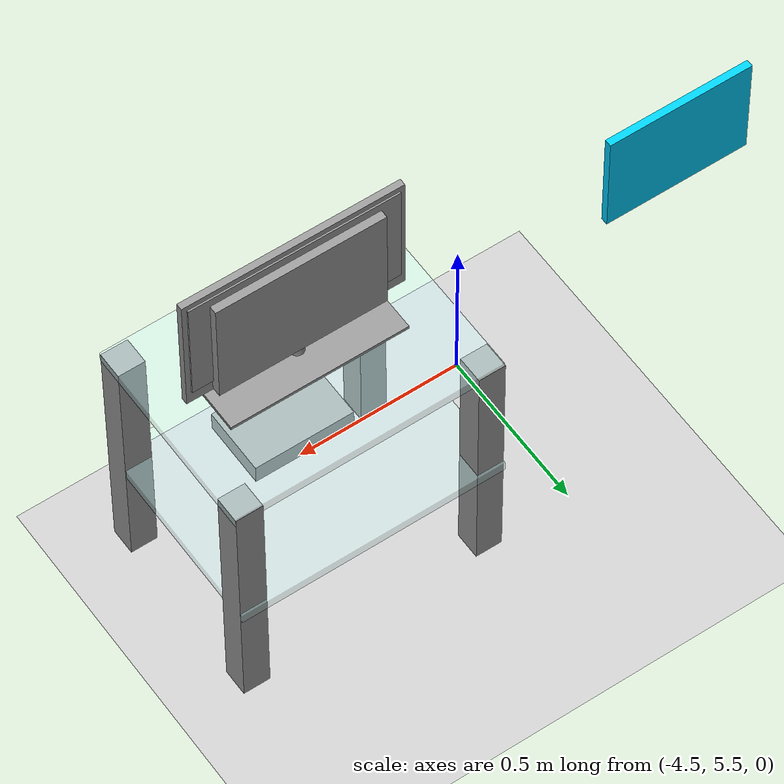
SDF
<sdf version="1.7">
 <world name="default">
  <model name="ground_plane">
   <static>1</static>
   <link name="link">
    <collision name="collision">
     <geometry><plane><normal>0 0 1</normal><size>100 100</size></plane></geometry>
     <surface>
      <contact><collide_bitmask>65535</collide_bitmask></contact>
      <friction><ode><mu>100</mu><mu2>50</mu2></ode></friction>
     </surface>
    </collision>
    <visual name="visual">
     <cast_shadows>0</cast_shadows>
     <geometry><plane><normal>0 0 1</normal><size>100 100</size></plane></geometry>
     <material>
      <script><uri>file://media/materials/scripts/gazebo.material</uri><name>Gazebo/Grey</name></script>
     </material>
    </visual>
   </link>
  </model>
  <model name="my_tv_set">
   <link name="link">
    <inertial>
     <mass>1</mass>
     <inertia>
      <ixx>0.166667</ixx>
      <ixy>0</ixy>
      <ixz>0</ixz>
      <iyy>0.166667</iyy>
      <iyz>0</iyz>
      <izz>0.166667</izz>
     </inertia>
    </inertial>
    <pose>0.111837 0.203266 0 0 -0 0</pose>
    <visual name="visual">
     <geometry><box><size>0.08 0.08 0.8</size></box></geometry>
     <material>
      <script><name>Gazebo/Grey</name><uri>file://media/materials/scripts/gazebo.material</uri></script>
      <shader type="pixel"><normal_map>__default__</normal_map></shader>
      <ambient>0.6 0.6 0.6 1</ambient>
      <diffuse>0.7 0.7 0.7 1</diffuse>
      <specular>0.01 0.01 0.01 1</specular>
      <emissive>0 0 0 1</emissive>
     </material>
     <pose>0 0 0.4 0 -0 0</pose>
    </visual>
    <collision name="collision">
     <pose>0 0 0.4 0 -0 0</pose>
     <geometry><box><size>0.08 0.08 0.8</size></box></geometry>
     <surface>
      <friction>
       <ode><mu>1</mu><mu2>1</mu2><fdir1>0 0 0</fdir1><slip1>0</slip1><slip2>0</slip2></ode>
       <torsional>
        <coefficient>1</coefficient>
        <patch_radius>0</patch_radius>
        <surface_radius>0</surface_radius>
        <use_patch_radius>1</use_patch_radius>
        <ode><slip>0</slip></ode>
       </torsional>
      </friction>
      <bounce><restitution_coefficient>0</restitution_coefficient><threshold>1e+06</threshold></bounce>
      <contact>
       <collide_without_contact>0</collide_without_contact>
       <collide_without_contact_bitmask>1</collide_without_contact_bitmask>
       <collide_bitmask>1</collide_bitmask>
       <ode>
        <soft_cfm>0</soft_cfm>
        <soft_erp>0.2</soft_erp>
        <kp>1e+13</kp>
        <kd>1</kd>
        <max_vel>0.01</max_vel>
        <min_depth>0</min_depth>
       </ode>
       <bullet>
        <split_impulse>1</split_impulse>
        <split_impulse_penetration_threshold>-0.01</split_impulse_penetration_threshold>
        <soft_cfm>0</soft_cfm>
        <soft_erp>0.2</soft_erp>
        <kp>1e+13</kp>
        <kd>1</kd>
       </bullet>
      </contact>
     </surface>
    </collision>
   </link>
   <link name="link_0">
    <inertial>
     <mass>1</mass>
     <inertia>
      <ixx>0.166667</ixx>
      <ixy>0</ixy>
      <ixz>0</ixz>
      <iyy>0.166667</iyy>
      <iyz>0</iyz>
      <izz>0.166667</izz>
     </inertia>
    </inertial>
    <pose>0.470061 0.471071 -0.037751 0 -0 0</pose>
    <visual name="visual">
     <pose>0 0 0.4 0 -0 0</pose>
     <geometry><box><size>0.8 0.6 0.03</size></box></geometry>
     <material>
      <lighting>1</lighting>
      <script><uri>file://media/materials/scripts/gazebo.material</uri><name>Gazebo/Grey</name></script>
      <shader type="pixel"><normal_map>__default__</normal_map></shader>
      <ambient>0.79 1 1 0.3</ambient>
      <diffuse>0.79 1 1 0.3</diffuse>
      <specular>0.1 0.1 0.1 1</specular>
      <emissive>0 0 0 1</emissive>
     </material>
     <transparency>0.5</transparency>
    </visual>
    <collision name="collision">
     <pose>0 0 0.4 0 -0 0</pose>
     <geometry><box><size>0.8 0.6 0.03</size></box></geometry>
     <surface>
      <friction>
       <ode><mu>1</mu><mu2>1</mu2><fdir1>0 0 0</fdir1><slip1>0</slip1><slip2>0</slip2></ode>
       <torsional>
        <coefficient>1</coefficient>
        <patch_radius>0</patch_radius>
        <surface_radius>0</surface_radius>
        <use_patch_radius>1</use_patch_radius>
        <ode><slip>0</slip></ode>
       </torsional>
      </friction>
      <bounce><restitution_coefficient>0</restitution_coefficient><threshold>1e+06</threshold></bounce>
      <contact>
       <collide_without_contact>0</collide_without_contact>
       <collide_without_contact_bitmask>1</collide_without_contact_bitmask>
       <collide_bitmask>1</collide_bitmask>
       <ode>
        <soft_cfm>0</soft_cfm>
        <soft_erp>0.2</soft_erp>
        <kp>1e+13</kp>
        <kd>1</kd>
        <max_vel>0.01</max_vel>
        <min_depth>0</min_depth>
       </ode>
       <bullet>
        <split_impulse>1</split_impulse>
        <split_impulse_penetration_threshold>-0.01</split_impulse_penetration_threshold>
        <soft_cfm>0</soft_cfm>
        <soft_erp>0.2</soft_erp>
        <kp>1e+13</kp>
        <kd>1</kd>
       </bullet>
      </contact>
     </surface>
    </collision>
   </link>
   <link name="link_0_0">
    <inertial>
     <mass>1</mass>
     <inertia>
      <ixx>0.166667</ixx>
      <ixy>0</ixy>
      <ixz>0</ixz>
      <iyy>0.166667</iyy>
      <iyz>0</iyz>
      <izz>0.166667</izz>
     </inertia>
    </inertial>
    <pose>0.470061 0.361348 0.412162 0 -0 0</pose>
    <visual name="visual">
     <geometry><box><size>0.3 0.2 0.06</size></box></geometry>
     <material>
      <lighting>1</lighting>
      <script><uri>file://media/materials/scripts/gazebo.material</uri><name>Gazebo/Grey</name></script>
      <shader type="pixel"><normal_map>__default__</normal_map></shader>
      <ambient>0.2 0.2 0.2 0</ambient>
      <diffuse>0.2 0.2 0.2 1</diffuse>
      <specular>0.01 0.01 0.01 1</specular>
      <emissive>0 0 0 1</emissive>
     </material>
    </visual>
    <collision name="collision">
     <geometry><box><size>0.3 0.2 0.06</size></box></geometry>
     <surface>
      <friction>
       <ode><mu>1</mu><mu2>1</mu2><fdir1>0 0 0</fdir1><slip1>0</slip1><slip2>0</slip2></ode>
       <torsional>
        <coefficient>1</coefficient>
        <patch_radius>0</patch_radius>
        <surface_radius>0</surface_radius>
        <use_patch_radius>1</use_patch_radius>
        <ode><slip>0</slip></ode>
       </torsional>
      </friction>
      <bounce><restitution_coefficient>0</restitution_coefficient><threshold>1e+06</threshold></bounce>
      <contact>
       <collide_without_contact>0</collide_without_contact>
       <collide_without_contact_bitmask>1</collide_without_contact_bitmask>
       <collide_bitmask>1</collide_bitmask>
       <ode>
        <soft_cfm>0</soft_cfm>
        <soft_erp>0.2</soft_erp>
        <kp>1e+13</kp>
        <kd>1</kd>
        <max_vel>0.01</max_vel>
        <min_depth>0</min_depth>
       </ode>
       <bullet>
        <split_impulse>1</split_impulse>
        <split_impulse_penetration_threshold>-0.01</split_impulse_penetration_threshold>
        <soft_cfm>0</soft_cfm>
        <soft_erp>0.2</soft_erp>
        <kp>1e+13</kp>
        <kd>1</kd>
       </bullet>
      </contact>
     </surface>
    </collision>
   </link>
   <link name="link_0_1">
    <inertial>
     <mass>1</mass>
     <inertia>
      <ixx>0.166667</ixx>
      <ixy>0</ixy>
      <ixz>0</ixz>
      <iyy>0.166667</iyy>
      <iyz>0</iyz>
      <izz>0.166667</izz>
     </inertia>
    </inertial>
    <pose>0.41274 0.328539 0.410532 0 -0 0</pose>
    <visual name="visual">
     <geometry><box><size>0.15 0.14 0.035</size></box></geometry>
     <material>
      <lighting>1</lighting>
      <script><uri>file://media/materials/scripts/gazebo.material</uri><name>Gazebo/Grey</name></script>
      <shader type="pixel"><normal_map>__default__</normal_map></shader>
      <ambient>0.3 0.3 0.3 1</ambient>
      <diffuse>0.7 0.7 0.7 1</diffuse>
      <specular>0.01 0.01 0.01 1</specular>
      <emissive>0 0 0 1</emissive>
     </material>
    </visual>
    <collision name="collision">
     <geometry><box><size>0.15 0.14 0.035</size></box></geometry>
     <surface>
      <friction>
       <ode><mu>1</mu><mu2>1</mu2><fdir1>0 0 0</fdir1><slip1>0</slip1><slip2>0</slip2></ode>
       <torsional>
        <coefficient>1</coefficient>
        <patch_radius>0</patch_radius>
        <surface_radius>0</surface_radius>
        <use_patch_radius>1</use_patch_radius>
        <ode><slip>0</slip></ode>
       </torsional>
      </friction>
      <bounce><restitution_coefficient>0</restitution_coefficient><threshold>1e+06</threshold></bounce>
      <contact>
       <collide_without_contact>0</collide_without_contact>
       <collide_without_contact_bitmask>1</collide_without_contact_bitmask>
       <collide_bitmask>1</collide_bitmask>
       <ode>
        <soft_cfm>0</soft_cfm>
        <soft_erp>0.2</soft_erp>
        <kp>1e+13</kp>
        <kd>1</kd>
        <max_vel>0.01</max_vel>
        <min_depth>0</min_depth>
       </ode>
       <bullet>
        <split_impulse>1</split_impulse>
        <split_impulse_penetration_threshold>-0.01</split_impulse_penetration_threshold>
        <soft_cfm>0</soft_cfm>
        <soft_erp>0.2</soft_erp>
        <kp>1e+13</kp>
        <kd>1</kd>
       </bullet>
      </contact>
     </surface>
    </collision>
   </link>
   <link name="link_0_clone">
    <inertial>
     <mass>1</mass>
     <inertia>
      <ixx>0.166667</ixx>
      <ixy>0</ixy>
      <ixz>0</ixz>
      <iyy>0.166667</iyy>
      <iyz>0</iyz>
      <izz>0.166667</izz>
     </inertia>
    </inertial>
    <pose>0.470453 0.462923 0.393901 4e-06 0.005849 0.001188</pose>
    <visual name="visual">
     <pose>0 0 0.4 0 -0 0</pose>
     <geometry><box><size>0.8 0.6 0.03</size></box></geometry>
     <material>
      <lighting>1</lighting>
      <script><uri>file://media/materials/scripts/gazebo.material</uri><name>Gazebo/Grey</name></script>
      <shader type="pixel"><normal_map>__default__</normal_map></shader>
      <ambient>0.79 1 1 0.3</ambient>
      <diffuse>0.79 1 1 0.3</diffuse>
      <specular>0.1 0.1 0.1 1</specular>
      <emissive>0 0 0 1</emissive>
     </material>
     <transparency>0.5</transparency>
    </visual>
    <collision name="collision">
     <pose>0 0 0.4 0 -0 0</pose>
     <geometry><box><size>0.8 0.6 0.03</size></box></geometry>
     <surface>
      <friction>
       <ode><mu>1</mu><mu2>1</mu2><fdir1>0 0 0</fdir1><slip1>0</slip1><slip2>0</slip2></ode>
       <torsional>
        <coefficient>1</coefficient>
        <patch_radius>0</patch_radius>
        <surface_radius>0</surface_radius>
        <use_patch_radius>1</use_patch_radius>
        <ode><slip>0</slip></ode>
       </torsional>
      </friction>
      <bounce><restitution_coefficient>0</restitution_coefficient><threshold>1e+06</threshold></bounce>
      <contact>
       <collide_without_contact>0</collide_without_contact>
       <collide_without_contact_bitmask>1</collide_without_contact_bitmask>
       <collide_bitmask>1</collide_bitmask>
       <ode>
        <soft_cfm>0</soft_cfm>
        <soft_erp>0.2</soft_erp>
        <kp>1e+13</kp>
        <kd>1</kd>
        <max_vel>0.01</max_vel>
        <min_depth>0</min_depth>
       </ode>
       <bullet>
        <split_impulse>1</split_impulse>
        <split_impulse_penetration_threshold>-0.01</split_impulse_penetration_threshold>
        <soft_cfm>0</soft_cfm>
        <soft_erp>0.2</soft_erp>
        <kp>1e+13</kp>
        <kd>1</kd>
       </bullet>
      </contact>
     </surface>
    </collision>
   </link>
   <link name="link_1">
    <inertial>
     <mass>1</mass>
     <inertia><ixx>0.1</ixx><ixy>0</ixy><ixz>0</ixz><iyy>0.1</iyy><iyz>0</iyz><izz>0.1</izz></inertia>
    </inertial>
    <pose>0.574001 0.261573 0.40938 0 -0 0</pose>
    <visual name="visual">
     <geometry><sphere><radius>0.005</radius></sphere></geometry>
     <material>
      <lighting>1</lighting>
      <script><uri>file://media/materials/scripts/gazebo.material</uri><name>Gazebo/Grey</name></script>
      <shader type="pixel"><normal_map>__default__</normal_map></shader>
      <ambient>1 0 0 1</ambient>
      <diffuse>1 0 0 1</diffuse>
      <specular>0.01 0.01 0.01 1</specular>
      <emissive>0.5 0 0 1</emissive>
     </material>
    </visual>
    <collision name="collision">
     <geometry><sphere><radius>0.005</radius></sphere></geometry>
     <surface>
      <friction>
       <ode><mu>1</mu><mu2>1</mu2><fdir1>0 0 0</fdir1><slip1>0</slip1><slip2>0</slip2></ode>
       <torsional>
        <coefficient>1</coefficient>
        <patch_radius>0</patch_radius>
        <surface_radius>0</surface_radius>
        <use_patch_radius>1</use_patch_radius>
        <ode><slip>0</slip></ode>
       </torsional>
      </friction>
      <bounce><restitution_coefficient>0</restitution_coefficient><threshold>1e+06</threshold></bounce>
      <contact>
       <collide_without_contact>0</collide_without_contact>
       <collide_without_contact_bitmask>1</collide_without_contact_bitmask>
       <collide_bitmask>1</collide_bitmask>
       <ode>
        <soft_cfm>0</soft_cfm>
        <soft_erp>0.2</soft_erp>
        <kp>1e+13</kp>
        <kd>1</kd>
        <max_vel>0.01</max_vel>
        <min_depth>0</min_depth>
       </ode>
       <bullet>
        <split_impulse>1</split_impulse>
        <split_impulse_penetration_threshold>-0.01</split_impulse_penetration_threshold>
        <soft_cfm>0</soft_cfm>
        <soft_erp>0.2</soft_erp>
        <kp>1e+13</kp>
        <kd>1</kd>
       </bullet>
      </contact>
     </surface>
    </collision>
   </link>
   <link name="link_1_0">
    <inertial>
     <mass>1</mass>
     <inertia>
      <ixx>0.166667</ixx>
      <ixy>0</ixy>
      <ixz>0</ixz>
      <iyy>0.166667</iyy>
      <iyz>0</iyz>
      <izz>0.166667</izz>
     </inertia>
    </inertial>
    <pose>0.471646 0.442924 0.818235 0 -0 0</pose>
    <visual name="visual">
     <geometry><box><size>0.53 0.2 0.01</size></box></geometry>
     <material>
      <lighting>1</lighting>
      <script><uri>file://media/materials/scripts/gazebo.material</uri><name>Gazebo/Grey</name></script>
      <shader type="pixel"><normal_map>__default__</normal_map></shader>
      <ambient>0.1 0.1 0.1 1</ambient>
      <diffuse>0.3 0.3 0.3 1</diffuse>
      <specular>0.01 0.01 0.01 1</specular>
      <emissive>0 0 0 1</emissive>
     </material>
    </visual>
    <collision name="collision">
     <geometry><box><size>0.53 0.2 0.01</size></box></geometry>
     <surface>
      <friction>
       <ode><mu>1</mu><mu2>1</mu2><fdir1>0 0 0</fdir1><slip1>0</slip1><slip2>0</slip2></ode>
       <torsional>
        <coefficient>1</coefficient>
        <patch_radius>0</patch_radius>
        <surface_radius>0</surface_radius>
        <use_patch_radius>1</use_patch_radius>
        <ode><slip>0</slip></ode>
       </torsional>
      </friction>
      <bounce><restitution_coefficient>0</restitution_coefficient><threshold>1e+06</threshold></bounce>
      <contact>
       <collide_without_contact>0</collide_without_contact>
       <collide_without_contact_bitmask>1</collide_without_contact_bitmask>
       <collide_bitmask>1</collide_bitmask>
       <ode>
        <soft_cfm>0</soft_cfm>
        <soft_erp>0.2</soft_erp>
        <kp>1e+13</kp>
        <kd>1</kd>
        <max_vel>0.01</max_vel>
        <min_depth>0</min_depth>
       </ode>
       <bullet>
        <split_impulse>1</split_impulse>
        <split_impulse_penetration_threshold>-0.01</split_impulse_penetration_threshold>
        <soft_cfm>0</soft_cfm>
        <soft_erp>0.2</soft_erp>
        <kp>1e+13</kp>
        <kd>1</kd>
       </bullet>
      </contact>
     </surface>
    </collision>
   </link>
   <link name="link_1_clone">
    <inertial>
     <mass>1</mass>
     <inertia><ixx>0.1</ixx><ixy>0</ixy><ixz>0</ixz><iyy>0.1</iyy><iyz>0</iyz><izz>0.1</izz></inertia>
    </inertial>
    <pose>0.762041 0.41864 0.873637 0 -0 0</pose>
    <visual name="visual">
     <geometry><sphere><radius>0.005</radius></sphere></geometry>
     <material>
      <lighting>1</lighting>
      <script><uri>file://media/materials/scripts/gazebo.material</uri><name>Gazebo/Grey</name></script>
      <shader type="pixel"><normal_map>__default__</normal_map></shader>
      <ambient>1 0 0 1</ambient>
      <diffuse>1 0 0 1</diffuse>
      <specular>0.01 0.01 0.01 1</specular>
      <emissive>0.5 0 0 1</emissive>
     </material>
    </visual>
    <collision name="collision">
     <geometry><sphere><radius>0.005</radius></sphere></geometry>
     <surface>
      <friction>
       <ode><mu>1</mu><mu2>1</mu2><fdir1>0 0 0</fdir1><slip1>0</slip1><slip2>0</slip2></ode>
       <torsional>
        <coefficient>1</coefficient>
        <patch_radius>0</patch_radius>
        <surface_radius>0</surface_radius>
        <use_patch_radius>1</use_patch_radius>
        <ode><slip>0</slip></ode>
       </torsional>
      </friction>
      <bounce><restitution_coefficient>0</restitution_coefficient><threshold>1e+06</threshold></bounce>
      <contact>
       <collide_without_contact>0</collide_without_contact>
       <collide_without_contact_bitmask>1</collide_without_contact_bitmask>
       <collide_bitmask>1</collide_bitmask>
       <ode>
        <soft_cfm>0</soft_cfm>
        <soft_erp>0.2</soft_erp>
        <kp>1e+13</kp>
        <kd>1</kd>
        <max_vel>0.01</max_vel>
        <min_depth>0</min_depth>
       </ode>
       <bullet>
        <split_impulse>1</split_impulse>
        <split_impulse_penetration_threshold>-0.01</split_impulse_penetration_threshold>
        <soft_cfm>0</soft_cfm>
        <soft_erp>0.2</soft_erp>
        <kp>1e+13</kp>
        <kd>1</kd>
       </bullet>
      </contact>
     </surface>
    </collision>
   </link>
   <link name="link_2">
    <inertial>
     <mass>1</mass>
     <inertia><ixx>0.145833</ixx><ixy>0</ixy><ixz>0</ixz><iyy>0.145833</iyy><iyz>0</iyz><izz>0.125</izz></inertia>
    </inertial>
    <pose>0.472907 0.442924 0.831235 0 -0 0</pose>
    <visual name="visual">
     <geometry><cylinder><radius>0.02</radius><length>0.04</length></cylinder></geometry>
     <material>
      <lighting>1</lighting>
      <script><uri>file://media/materials/scripts/gazebo.material</uri><name>Gazebo/Grey</name></script>
      <shader type="pixel"><normal_map>__default__</normal_map></shader>
      <ambient>0.1 0.1 0.1 0</ambient>
      <diffuse>0.3 0.3 0.3 1</diffuse>
      <specular>0.01 0.01 0.01 1</specular>
      <emissive>0 0 0 1</emissive>
     </material>
    </visual>
    <collision name="collision">
     <geometry><cylinder><radius>0.02</radius><length>0.04</length></cylinder></geometry>
     <surface>
      <friction>
       <ode><mu>1</mu><mu2>1</mu2><fdir1>0 0 0</fdir1><slip1>0</slip1><slip2>0</slip2></ode>
       <torsional>
        <coefficient>1</coefficient>
        <patch_radius>0</patch_radius>
        <surface_radius>0</surface_radius>
        <use_patch_radius>1</use_patch_radius>
        <ode><slip>0</slip></ode>
       </torsional>
      </friction>
      <bounce><restitution_coefficient>0</restitution_coefficient><threshold>1e+06</threshold></bounce>
      <contact>
       <collide_without_contact>0</collide_without_contact>
       <collide_without_contact_bitmask>1</collide_without_contact_bitmask>
       <collide_bitmask>1</collide_bitmask>
       <ode>
        <soft_cfm>0</soft_cfm>
        <soft_erp>0.2</soft_erp>
        <kp>1e+13</kp>
        <kd>1</kd>
        <max_vel>0.01</max_vel>
        <min_depth>0</min_depth>
       </ode>
       <bullet>
        <split_impulse>1</split_impulse>
        <split_impulse_penetration_threshold>-0.01</split_impulse_penetration_threshold>
        <soft_cfm>0</soft_cfm>
        <soft_erp>0.2</soft_erp>
        <kp>1e+13</kp>
        <kd>1</kd>
       </bullet>
      </contact>
     </surface>
    </collision>
   </link>
   <link name="link_3">
    <inertial>
     <mass>1</mass>
     <inertia>
      <ixx>0.166667</ixx>
      <ixy>0</ixy>
      <ixz>0</ixz>
      <iyy>0.166667</iyy>
      <iyz>0</iyz>
      <izz>0.166667</izz>
     </inertia>
    </inertial>
    <pose>0.469996 0.427043 1.0468 0 -0 0</pose>
    <visual name="visual">
     <geometry><box><size>0.65 0.02 0.4</size></box></geometry>
     <material>
      <lighting>1</lighting>
      <script><uri>file://media/materials/scripts/gazebo.material</uri><name>Gazebo/Grey</name></script>
      <shader type="pixel"><normal_map>__default__</normal_map></shader>
      <ambient>0.1 0.1 0.1 1</ambient>
      <diffuse>0.3 0.3 0.3 1</diffuse>
      <specular>0.01 0.01 0.01 1</specular>
      <emissive>0 0 0 1</emissive>
     </material>
    </visual>
    <collision name="collision">
     <geometry><box><size>0.65 0.02 0.4</size></box></geometry>
     <surface>
      <friction>
       <ode><mu>1</mu><mu2>1</mu2><fdir1>0 0 0</fdir1><slip1>0</slip1><slip2>0</slip2></ode>
       <torsional>
        <coefficient>1</coefficient>
        <patch_radius>0</patch_radius>
        <surface_radius>0</surface_radius>
        <use_patch_radius>1</use_patch_radius>
        <ode><slip>0</slip></ode>
       </torsional>
      </friction>
      <bounce><restitution_coefficient>0</restitution_coefficient><threshold>1e+06</threshold></bounce>
      <contact>
       <collide_without_contact>0</collide_without_contact>
       <collide_without_contact_bitmask>1</collide_without_contact_bitmask>
       <collide_bitmask>1</collide_bitmask>
       <ode>
        <soft_cfm>0</soft_cfm>
        <soft_erp>0.2</soft_erp>
        <kp>1e+13</kp>
        <kd>1</kd>
        <max_vel>0.01</max_vel>
        <min_depth>0</min_depth>
       </ode>
       <bullet>
        <split_impulse>1</split_impulse>
        <split_impulse_penetration_threshold>-0.01</split_impulse_penetration_threshold>
        <soft_cfm>0</soft_cfm>
        <soft_erp>0.2</soft_erp>
        <kp>1e+13</kp>
        <kd>1</kd>
       </bullet>
      </contact>
     </surface>
    </collision>
   </link>
   <link name="link_3_clone">
    <inertial>
     <mass>1</mass>
     <inertia>
      <ixx>0.166667</ixx>
      <ixy>0</ixy>
      <ixz>0</ixz>
      <iyy>0.166667</iyy>
      <iyz>0</iyz>
      <izz>0.166667</izz>
     </inertia>
    </inertial>
    <pose>0.467494 0.45061 1.02711 0 -0 0</pose>
    <visual name="visual">
     <geometry><box><size>0.5 0.03 0.35</size></box></geometry>
     <material>
      <lighting>1</lighting>
      <script><uri>file://media/materials/scripts/gazebo.material</uri><name>Gazebo/Grey</name></script>
      <shader type="pixel"><normal_map>__default__</normal_map></shader>
      <ambient>0.1 0.1 0.1 1</ambient>
      <diffuse>0.3 0.3 0.3 1</diffuse>
      <specular>0.01 0.01 0.01 1</specular>
      <emissive>0 0 0 1</emissive>
     </material>
    </visual>
    <collision name="collision">
     <geometry><box><size>0.5 0.03 0.35</size></box></geometry>
     <surface>
      <friction>
       <ode><mu>1</mu><mu2>1</mu2><fdir1>0 0 0</fdir1><slip1>0</slip1><slip2>0</slip2></ode>
       <torsional>
        <coefficient>1</coefficient>
        <patch_radius>0</patch_radius>
        <surface_radius>0</surface_radius>
        <use_patch_radius>1</use_patch_radius>
        <ode><slip>0</slip></ode>
       </torsional>
      </friction>
      <bounce><restitution_coefficient>0</restitution_coefficient><threshold>1e+06</threshold></bounce>
      <contact>
       <collide_without_contact>0</collide_without_contact>
       <collide_without_contact_bitmask>1</collide_without_contact_bitmask>
       <collide_bitmask>1</collide_bitmask>
       <ode>
        <soft_cfm>0</soft_cfm>
        <soft_erp>0.2</soft_erp>
        <kp>1e+13</kp>
        <kd>1</kd>
        <max_vel>0.01</max_vel>
        <min_depth>0</min_depth>
       </ode>
       <bullet>
        <split_impulse>1</split_impulse>
        <split_impulse_penetration_threshold>-0.01</split_impulse_penetration_threshold>
        <soft_cfm>0</soft_cfm>
        <soft_erp>0.2</soft_erp>
        <kp>1e+13</kp>
        <kd>1</kd>
       </bullet>
      </contact>
     </surface>
    </collision>
   </link>
   <link name="link_3_clone_clone">
    <inertial>
     <mass>1</mass>
     <inertia>
      <ixx>0.166667</ixx>
      <ixy>0</ixy>
      <ixz>0</ixz>
      <iyy>0.166667</iyy>
      <iyz>0</iyz>
      <izz>0.166667</izz>
     </inertia>
    </inertial>
    <pose>0.469808 0.426878 1.05906 0 -0 0</pose>
    <visual name="visual">
     <geometry><box><size>0.62 0.03 0.34</size></box></geometry>
     <material>
      <lighting>1</lighting>
      <script><uri>file://media/materials/scripts/gazebo.material</uri><name>Gazebo/Grey</name></script>
      <shader type="pixel"><normal_map>__default__</normal_map></shader>
      <ambient>0.3 0.3 0.3 1</ambient>
      <diffuse>0.4 0.4 0.4 1</diffuse>
      <specular>0.01 0.01 0.01 1</specular>
      <emissive>0 0 0 1</emissive>
     </material>
    </visual>
    <collision name="collision">
     <geometry><box><size>0.62 0.03 0.34</size></box></geometry>
     <surface>
      <friction>
       <ode><mu>1</mu><mu2>1</mu2><fdir1>0 0 0</fdir1><slip1>0</slip1><slip2>0</slip2></ode>
       <torsional>
        <coefficient>1</coefficient>
        <patch_radius>0</patch_radius>
        <surface_radius>0</surface_radius>
        <use_patch_radius>1</use_patch_radius>
        <ode><slip>0</slip></ode>
       </torsional>
      </friction>
      <bounce><restitution_coefficient>0</restitution_coefficient><threshold>1e+06</threshold></bounce>
      <contact>
       <collide_without_contact>0</collide_without_contact>
       <collide_without_contact_bitmask>1</collide_without_contact_bitmask>
       <collide_bitmask>1</collide_bitmask>
       <ode>
        <soft_cfm>0</soft_cfm>
        <soft_erp>0.2</soft_erp>
        <kp>1e+13</kp>
        <kd>1</kd>
        <max_vel>0.01</max_vel>
        <min_depth>0</min_depth>
       </ode>
       <bullet>
        <split_impulse>1</split_impulse>
        <split_impulse_penetration_threshold>-0.01</split_impulse_penetration_threshold>
        <soft_cfm>0</soft_cfm>
        <soft_erp>0.2</soft_erp>
        <kp>1e+13</kp>
        <kd>1</kd>
       </bullet>
      </contact>
     </surface>
    </collision>
   </link>
   <link name="link_clone">
    <inertial>
     <mass>1</mass>
     <inertia>
      <ixx>0.166667</ixx>
      <ixy>0</ixy>
      <ixz>0</ixz>
      <iyy>0.166667</iyy>
      <iyz>0</iyz>
      <izz>0.166667</izz>
     </inertia>
    </inertial>
    <pose>0.831942 0.205036 0 0 -0 0</pose>
    <visual name="visual">
     <geometry><box><size>0.08 0.08 0.8</size></box></geometry>
     <material>
      <script><name>Gazebo/Grey</name><uri>file://media/materials/scripts/gazebo.material</uri></script>
      <shader type="pixel"><normal_map>__default__</normal_map></shader>
      <ambient>0.6 0.6 0.6 1</ambient>
      <diffuse>0.7 0.7 0.7 1</diffuse>
      <specular>0.01 0.01 0.01 1</specular>
      <emissive>0 0 0 1</emissive>
     </material>
     <pose>0 0 0.4 0 -0 0</pose>
    </visual>
    <collision name="collision">
     <pose>0 0 0.4 0 -0 0</pose>
     <geometry><box><size>0.08 0.08 0.8</size></box></geometry>
     <surface>
      <friction>
       <ode><mu>1</mu><mu2>1</mu2><fdir1>0 0 0</fdir1><slip1>0</slip1><slip2>0</slip2></ode>
       <torsional>
        <coefficient>1</coefficient>
        <patch_radius>0</patch_radius>
        <surface_radius>0</surface_radius>
        <use_patch_radius>1</use_patch_radius>
        <ode><slip>0</slip></ode>
       </torsional>
      </friction>
      <bounce><restitution_coefficient>0</restitution_coefficient><threshold>1e+06</threshold></bounce>
      <contact>
       <collide_without_contact>0</collide_without_contact>
       <collide_without_contact_bitmask>1</collide_without_contact_bitmask>
       <collide_bitmask>1</collide_bitmask>
       <ode>
        <soft_cfm>0</soft_cfm>
        <soft_erp>0.2</soft_erp>
        <kp>1e+13</kp>
        <kd>1</kd>
        <max_vel>0.01</max_vel>
        <min_depth>0</min_depth>
       </ode>
       <bullet>
        <split_impulse>1</split_impulse>
        <split_impulse_penetration_threshold>-0.01</split_impulse_penetration_threshold>
        <soft_cfm>0</soft_cfm>
        <soft_erp>0.2</soft_erp>
        <kp>1e+13</kp>
        <kd>1</kd>
       </bullet>
      </contact>
     </surface>
    </collision>
   </link>
   <link name="link_clone_0">
    <inertial>
     <mass>1</mass>
     <inertia>
      <ixx>0.166667</ixx>
      <ixy>0</ixy>
      <ixz>0</ixz>
      <iyy>0.166667</iyy>
      <iyz>0</iyz>
      <izz>0.166667</izz>
     </inertia>
    </inertial>
    <pose>0.110061 0.7232 9e-06 0 -0 0</pose>
    <visual name="visual">
     <geometry><box><size>0.08 0.08 0.8</size></box></geometry>
     <material>
      <script><name>Gazebo/Grey</name><uri>file://media/materials/scripts/gazebo.material</uri></script>
      <shader type="pixel"><normal_map>__default__</normal_map></shader>
      <ambient>0.6 0.6 0.6 1</ambient>
      <diffuse>0.7 0.7 0.7 1</diffuse>
      <specular>0.01 0.01 0.01 1</specular>
      <emissive>0 0 0 1</emissive>
     </material>
     <pose>0 0 0.4 0 -0 0</pose>
    </visual>
    <collision name="collision">
     <pose>0 0 0.4 0 -0 0</pose>
     <geometry><box><size>0.08 0.08 0.8</size></box></geometry>
     <surface>
      <friction>
       <ode><mu>1</mu><mu2>1</mu2><fdir1>0 0 0</fdir1><slip1>0</slip1><slip2>0</slip2></ode>
       <torsional>
        <coefficient>1</coefficient>
        <patch_radius>0</patch_radius>
        <surface_radius>0</surface_radius>
        <use_patch_radius>1</use_patch_radius>
        <ode><slip>0</slip></ode>
       </torsional>
      </friction>
      <bounce><restitution_coefficient>0</restitution_coefficient><threshold>1e+06</threshold></bounce>
      <contact>
       <collide_without_contact>0</collide_without_contact>
       <collide_without_contact_bitmask>1</collide_without_contact_bitmask>
       <collide_bitmask>1</collide_bitmask>
       <ode>
        <soft_cfm>0</soft_cfm>
        <soft_erp>0.2</soft_erp>
        <kp>1e+13</kp>
        <kd>1</kd>
        <max_vel>0.01</max_vel>
        <min_depth>0</min_depth>
       </ode>
       <bullet>
        <split_impulse>1</split_impulse>
        <split_impulse_penetration_threshold>-0.01</split_impulse_penetration_threshold>
        <soft_cfm>0</soft_cfm>
        <soft_erp>0.2</soft_erp>
        <kp>1e+13</kp>
        <kd>1</kd>
       </bullet>
      </contact>
     </surface>
    </collision>
   </link>
   <link name="link_clone_0_clone">
    <inertial>
     <mass>1</mass>
     <inertia>
      <ixx>0.166667</ixx>
      <ixy>0</ixy>
      <ixz>0</ixz>
      <iyy>0.166667</iyy>
      <iyz>0</iyz>
      <izz>0.166667</izz>
     </inertia>
    </inertial>
    <pose>0.831088 0.724155 0 0 -0 0</pose>
    <visual name="visual">
     <geometry><box><size>0.08 0.08 0.8</size></box></geometry>
     <material>
      <script><name>Gazebo/Grey</name><uri>file://media/materials/scripts/gazebo.material</uri></script>
      <shader type="pixel"><normal_map>__default__</normal_map></shader>
      <ambient>0.6 0.6 0.6 1</ambient>
      <diffuse>0.7 0.7 0.7 1</diffuse>
      <specular>0.01 0.01 0.01 1</specular>
      <emissive>0 0 0 1</emissive>
     </material>
     <pose>0 0 0.4 0 -0 0</pose>
    </visual>
    <collision name="collision">
     <pose>0 0 0.4 0 -0 0</pose>
     <geometry><box><size>0.08 0.08 0.8</size></box></geometry>
     <surface>
      <friction>
       <ode><mu>1</mu><mu2>1</mu2><fdir1>0 0 0</fdir1><slip1>0</slip1><slip2>0</slip2></ode>
       <torsional>
        <coefficient>1</coefficient>
        <patch_radius>0</patch_radius>
        <surface_radius>0</surface_radius>
        <use_patch_radius>1</use_patch_radius>
        <ode><slip>0</slip></ode>
       </torsional>
      </friction>
      <bounce><restitution_coefficient>0</restitution_coefficient><threshold>1e+06</threshold></bounce>
      <contact>
       <collide_without_contact>0</collide_without_contact>
       <collide_without_contact_bitmask>1</collide_without_contact_bitmask>
       <collide_bitmask>1</collide_bitmask>
       <ode>
        <soft_cfm>0</soft_cfm>
        <soft_erp>0.2</soft_erp>
        <kp>1e+13</kp>
        <kd>1</kd>
        <max_vel>0.01</max_vel>
        <min_depth>0</min_depth>
       </ode>
       <bullet>
        <split_impulse>1</split_impulse>
        <split_impulse_penetration_threshold>-0.01</split_impulse_penetration_threshold>
        <soft_cfm>0</soft_cfm>
        <soft_erp>0.2</soft_erp>
        <kp>1e+13</kp>
        <kd>1</kd>
       </bullet>
      </contact>
     </surface>
    </collision>
   </link>
   <joint name="link_0_0_JOINT_1" type="fixed">
    <parent>link_0_0</parent>
    <child>link_1</child>
    <physics>
     <ode><limit><cfm>0</cfm><erp>0.2</erp></limit><suspension><cfm>0</cfm><erp>0.2</erp></suspension></ode>
    </physics>
   </joint>
   <joint name="link_0_JOINT_0" type="fixed">
    <parent>link_0</parent>
    <child>link_0_0</child>
    <physics>
     <ode><limit><cfm>0</cfm><erp>0.2</erp></limit><suspension><cfm>0</cfm><erp>0.2</erp></suspension></ode>
    </physics>
   </joint>
   <joint name="link_0_JOINT_1" type="fixed">
    <parent>link_0</parent>
    <child>link_clone_0</child>
    <physics>
     <ode><limit><cfm>0</cfm><erp>0.2</erp></limit><suspension><cfm>0</cfm><erp>0.2</erp></suspension></ode>
    </physics>
   </joint>
   <joint name="link_0_JOINT_2" type="fixed">
    <parent>link_0</parent>
    <child>link_clone</child>
    <physics>
     <ode><limit><cfm>0</cfm><erp>0.2</erp></limit><suspension><cfm>0</cfm><erp>0.2</erp></suspension></ode>
    </physics>
   </joint>
   <joint name="link_0_JOINT_4" type="fixed">
    <parent>link_0</parent>
    <child>link_clone_0_clone</child>
    <physics>
     <ode><limit><cfm>0</cfm><erp>0.2</erp></limit><suspension><cfm>0</cfm><erp>0.2</erp></suspension></ode>
    </physics>
   </joint>
   <joint name="link_0_clone_JOINT_0_0" type="fixed">
    <parent>link_0_clone</parent>
    <child>link_1_0</child>
    <physics>
     <ode><limit><cfm>0</cfm><erp>0.2</erp></limit><suspension><cfm>0</cfm><erp>0.2</erp></suspension></ode>
    </physics>
   </joint>
   <joint name="link_0_clone_JOINT_0" type="fixed">
    <parent>link_0_clone</parent>
    <child>link</child>
    <physics>
     <ode><limit><cfm>0</cfm><erp>0.2</erp></limit><suspension><cfm>0</cfm><erp>0.2</erp></suspension></ode>
    </physics>
   </joint>
   <joint name="link_0_clone_JOINT_3" type="fixed">
    <parent>link_0_clone</parent>
    <child>link_clone</child>
    <physics>
     <ode><limit><cfm>0</cfm><erp>0.2</erp></limit><suspension><cfm>0</cfm><erp>0.2</erp></suspension></ode>
    </physics>
   </joint>
   <joint name="link_0_clone_JOINT_5" type="fixed">
    <parent>link_0_clone</parent>
    <child>link</child>
    <physics>
     <ode><limit><cfm>0</cfm><erp>0.2</erp></limit><suspension><cfm>0</cfm><erp>0.2</erp></suspension></ode>
    </physics>
   </joint>
   <joint name="link_1_0_JOINT_1" type="fixed">
    <parent>link_1_0</parent>
    <child>link_2</child>
    <physics>
     <ode><limit><cfm>0</cfm><erp>0.2</erp></limit><suspension><cfm>0</cfm><erp>0.2</erp></suspension></ode>
    </physics>
   </joint>
   <joint name="link_2_JOINT_2" type="fixed">
    <parent>link_2</parent>
    <child>link_3</child>
    <physics>
     <ode><limit><cfm>0</cfm><erp>0.2</erp></limit><suspension><cfm>0</cfm><erp>0.2</erp></suspension></ode>
    </physics>
   </joint>
   <static>1</static>
   <pose>-4.34665 5.25538 0 0 -0 0</pose>
  </model>
  <model name="my_frame">
   <link name="link">
    <inertial>
     <mass>1</mass>
     <inertia>
      <ixx>0.166667</ixx>
      <ixy>0</ixy>
      <ixz>0</ixz>
      <iyy>0.166667</iyy>
      <iyz>0</iyz>
      <izz>0.166667</izz>
     </inertia>
    </inertial>
    <gravity>0</gravity>
    <visual name="visual">
     <geometry><box><size>0.02 0.4 0.3</size></box></geometry>
     <material>
      <script><name>Gazebo/Grey</name><uri>file://media/materials/scripts/gazebo.material</uri></script>
      <shader type="pixel"><normal_map>__default__</normal_map></shader>
      <ambient>0 0.81 1 1</ambient>
      <diffuse>0.7 0.7 0.7 1</diffuse>
      <specular>0.01 0.01 0.01 1</specular>
      <emissive>0 0 0 1</emissive>
     </material>
    </visual>
    <collision name="collision">
     <geometry><box><size>0.02 0.4 0.3</size></box></geometry>
     <surface>
      <friction>
       <ode><mu>1</mu><mu2>1</mu2><fdir1>0 0 0</fdir1><slip1>0</slip1><slip2>0</slip2></ode>
       <torsional>
        <coefficient>1</coefficient>
        <patch_radius>0</patch_radius>
        <surface_radius>0</surface_radius>
        <use_patch_radius>1</use_patch_radius>
        <ode><slip>0</slip></ode>
       </torsional>
      </friction>
      <bounce><restitution_coefficient>0</restitution_coefficient><threshold>1e+06</threshold></bounce>
      <contact>
       <collide_without_contact>0</collide_without_contact>
       <collide_without_contact_bitmask>1</collide_without_contact_bitmask>
       <collide_bitmask>1</collide_bitmask>
       <ode>
        <soft_cfm>0</soft_cfm>
        <soft_erp>0.2</soft_erp>
        <kp>1e+13</kp>
        <kd>1</kd>
        <max_vel>0.01</max_vel>
        <min_depth>0</min_depth>
       </ode>
       <bullet>
        <split_impulse>1</split_impulse>
        <split_impulse_penetration_threshold>-0.01</split_impulse_penetration_threshold>
        <soft_cfm>0</soft_cfm>
        <soft_erp>0.2</soft_erp>
        <kp>1e+13</kp>
        <kd>1</kd>
       </bullet>
      </contact>
     </surface>
    </collision>
   </link>
   <link name="link_2">
    <inertial>
     <mass>1</mass>
     <inertia><ixx>0.145833</ixx><ixy>0</ixy><ixz>0</ixz><iyy>0.145833</iyy><iyz>0</iyz><izz>0.125</izz></inertia>
    </inertial>
    <pose>0.015889 0.084711 -0.037956 0 -0 0</pose>
    <gravity>0</gravity>
    <visual name="visual">
     <pose>0 0 0 0 1.5707 0</pose>
     <geometry><cylinder><radius>0.04</radius><length>0.01</length></cylinder></geometry>
     <material>
      <lighting>1</lighting>
      <script><uri>file://media/materials/scripts/gazebo.material</uri><name>Gazebo/Grey</name></script>
      <shader type="pixel"><normal_map>__default__</normal_map></shader>
      <ambient>0.99 0.7 0 1</ambient>
      <diffuse>0.7 0.7 0.7 1</diffuse>
      <specular>0.01 0.01 0.01 1</specular>
      <emissive>0 0 0 1</emissive>
     </material>
    </visual>
    <collision name="collision">
     <pose>0 0 0 0 1.5707 0</pose>
     <geometry><cylinder><radius>0.04</radius><length>0.01</length></cylinder></geometry>
     <surface>
      <friction>
       <ode><mu>1</mu><mu2>1</mu2><fdir1>0 0 0</fdir1><slip1>0</slip1><slip2>0</slip2></ode>
       <torsional>
        <coefficient>1</coefficient>
        <patch_radius>0</patch_radius>
        <surface_radius>0</surface_radius>
        <use_patch_radius>1</use_patch_radius>
        <ode><slip>0</slip></ode>
       </torsional>
      </friction>
      <bounce><restitution_coefficient>0</restitution_coefficient><threshold>1e+06</threshold></bounce>
      <contact>
       <collide_without_contact>0</collide_without_contact>
       <collide_without_contact_bitmask>1</collide_without_contact_bitmask>
       <collide_bitmask>1</collide_bitmask>
       <ode>
        <soft_cfm>0</soft_cfm>
        <soft_erp>0.2</soft_erp>
        <kp>1e+13</kp>
        <kd>1</kd>
        <max_vel>0.01</max_vel>
        <min_depth>0</min_depth>
       </ode>
       <bullet>
        <split_impulse>1</split_impulse>
        <split_impulse_penetration_threshold>-0.01</split_impulse_penetration_threshold>
        <soft_cfm>0</soft_cfm>
        <soft_erp>0.2</soft_erp>
        <kp>1e+13</kp>
        <kd>1</kd>
       </bullet>
      </contact>
     </surface>
    </collision>
   </link>
   <link name="link_3">
    <inertial>
     <mass>1</mass>
     <inertia>
      <ixx>0.166667</ixx>
      <ixy>0</ixy>
      <ixz>0</ixz>
      <iyy>0.166667</iyy>
      <iyz>0</iyz>
      <izz>0.166667</izz>
     </inertia>
    </inertial>
    <pose>0.013898 -0.032005 0 0 -0 0</pose>
    <gravity>0</gravity>
    <visual name="visual">
     <pose>0 0 0 0.54 -0 0</pose>
     <geometry><box><size>0.01 0.15 0.15</size></box></geometry>
     <material>
      <lighting>1</lighting>
      <script><uri>file://media/materials/scripts/gazebo.material</uri><name>Gazebo/Grey</name></script>
      <shader type="pixel"><normal_map>__default__</normal_map></shader>
      <ambient>1 0.2 0 1</ambient>
      <diffuse>0.7 0.7 0.7 1</diffuse>
      <specular>0.01 0.01 0.01 1</specular>
      <emissive>0 0 0 1</emissive>
     </material>
    </visual>
    <collision name="collision">
     <pose>0 0 0 0.54 -0 0</pose>
     <geometry><box><size>0.01 0.15 0.15</size></box></geometry>
     <surface>
      <friction>
       <ode><mu>1</mu><mu2>1</mu2><fdir1>0 0 0</fdir1><slip1>0</slip1><slip2>0</slip2></ode>
       <torsional>
        <coefficient>1</coefficient>
        <patch_radius>0</patch_radius>
        <surface_radius>0</surface_radius>
        <use_patch_radius>1</use_patch_radius>
        <ode><slip>0</slip></ode>
       </torsional>
      </friction>
      <bounce><restitution_coefficient>0</restitution_coefficient><threshold>1e+06</threshold></bounce>
      <contact>
       <collide_without_contact>0</collide_without_contact>
       <collide_without_contact_bitmask>1</collide_without_contact_bitmask>
       <collide_bitmask>1</collide_bitmask>
       <ode>
        <soft_cfm>0</soft_cfm>
        <soft_erp>0.2</soft_erp>
        <kp>1e+13</kp>
        <kd>1</kd>
        <max_vel>0.01</max_vel>
        <min_depth>0</min_depth>
       </ode>
       <bullet>
        <split_impulse>1</split_impulse>
        <split_impulse_penetration_threshold>-0.01</split_impulse_penetration_threshold>
        <soft_cfm>0</soft_cfm>
        <soft_erp>0.2</soft_erp>
        <kp>1e+13</kp>
        <kd>1</kd>
       </bullet>
      </contact>
     </surface>
    </collision>
   </link>
   <link name="link_3_clone">
    <inertial>
     <mass>1</mass>
     <inertia>
      <ixx>0.166667</ixx>
      <ixy>0</ixy>
      <ixz>0</ixz>
      <iyy>0.166667</iyy>
      <iyz>0</iyz>
      <izz>0.166667</izz>
     </inertia>
    </inertial>
    <pose>0.015334 0.059714 0.061338 0 -0 0</pose>
    <gravity>0</gravity>
    <visual name="visual">
     <pose>0 0 0 -0.2 0 0</pose>
     <geometry><box><size>0.01 0.08 0.08</size></box></geometry>
     <material>
      <lighting>1</lighting>
      <script><uri>file://media/materials/scripts/gazebo.material</uri><name>Gazebo/Grey</name></script>
      <shader type="pixel"><normal_map>__default__</normal_map></shader>
      <ambient>0 0.2 1 1</ambient>
      <diffuse>0.7 0.7 0.7 1</diffuse>
      <specular>0.01 0.01 0.01 1</specular>
      <emissive>0 0 0 1</emissive>
     </material>
    </visual>
    <collision name="collision">
     <pose>0 0 0 -0.2 0 0</pose>
     <geometry><box><size>0.01 0.08 0.08</size></box></geometry>
     <surface>
      <friction>
       <ode><mu>1</mu><mu2>1</mu2><fdir1>0 0 0</fdir1><slip1>0</slip1><slip2>0</slip2></ode>
       <torsional>
        <coefficient>1</coefficient>
        <patch_radius>0</patch_radius>
        <surface_radius>0</surface_radius>
        <use_patch_radius>1</use_patch_radius>
        <ode><slip>0</slip></ode>
       </torsional>
      </friction>
      <bounce><restitution_coefficient>0</restitution_coefficient><threshold>1e+06</threshold></bounce>
      <contact>
       <collide_without_contact>0</collide_without_contact>
       <collide_without_contact_bitmask>1</collide_without_contact_bitmask>
       <collide_bitmask>1</collide_bitmask>
       <ode>
        <soft_cfm>0</soft_cfm>
        <soft_erp>0.2</soft_erp>
        <kp>1e+13</kp>
        <kd>1</kd>
        <max_vel>0.01</max_vel>
        <min_depth>0</min_depth>
       </ode>
       <bullet>
        <split_impulse>1</split_impulse>
        <split_impulse_penetration_threshold>-0.01</split_impulse_penetration_threshold>
        <soft_cfm>0</soft_cfm>
        <soft_erp>0.2</soft_erp>
        <kp>1e+13</kp>
        <kd>1</kd>
       </bullet>
      </contact>
     </surface>
    </collision>
   </link>
   <link name="link_clone">
    <inertial>
     <mass>1</mass>
     <inertia>
      <ixx>0.166667</ixx>
      <ixy>0</ixy>
      <ixz>0</ixz>
      <iyy>0.166667</iyy>
      <iyz>0</iyz>
      <izz>0.166667</izz>
     </inertia>
    </inertial>
    <pose>0.005108 0.000801 0 0 -0 0</pose>
    <gravity>0</gravity>
    <visual name="visual">
     <geometry><box><size>0.02 0.35 0.25</size></box></geometry>
     <material>
      <script><name>Gazebo/Grey</name><uri>file://media/materials/scripts/gazebo.material</uri></script>
      <shader type="pixel"><normal_map>__default__</normal_map></shader>
      <ambient>1 1 1 1</ambient>
      <diffuse>1 1 1 1</diffuse>
      <specular>0.01 0.01 0.01 1</specular>
      <emissive>0 0 0 1</emissive>
     </material>
    </visual>
    <collision name="collision">
     <geometry><box><size>0.02 0.4 0.3</size></box></geometry>
     <surface>
      <friction>
       <ode><mu>1</mu><mu2>1</mu2><fdir1>0 0 0</fdir1><slip1>0</slip1><slip2>0</slip2></ode>
       <torsional>
        <coefficient>1</coefficient>
        <patch_radius>0</patch_radius>
        <surface_radius>0</surface_radius>
        <use_patch_radius>1</use_patch_radius>
        <ode><slip>0</slip></ode>
       </torsional>
      </friction>
      <bounce><restitution_coefficient>0</restitution_coefficient><threshold>1e+06</threshold></bounce>
      <contact>
       <collide_without_contact>0</collide_without_contact>
       <collide_without_contact_bitmask>1</collide_without_contact_bitmask>
       <collide_bitmask>1</collide_bitmask>
       <ode>
        <soft_cfm>0</soft_cfm>
        <soft_erp>0.2</soft_erp>
        <kp>1e+13</kp>
        <kd>1</kd>
        <max_vel>0.01</max_vel>
        <min_depth>0</min_depth>
       </ode>
       <bullet>
        <split_impulse>1</split_impulse>
        <split_impulse_penetration_threshold>-0.01</split_impulse_penetration_threshold>
        <soft_cfm>0</soft_cfm>
        <soft_erp>0.2</soft_erp>
        <kp>1e+13</kp>
        <kd>1</kd>
       </bullet>
      </contact>
     </surface>
    </collision>
   </link>
   <static>1</static>
   <pose>-4.5083 6.34336 1.8954 0 0 -1.5708</pose>
  </model>
 </world>
</sdf>
